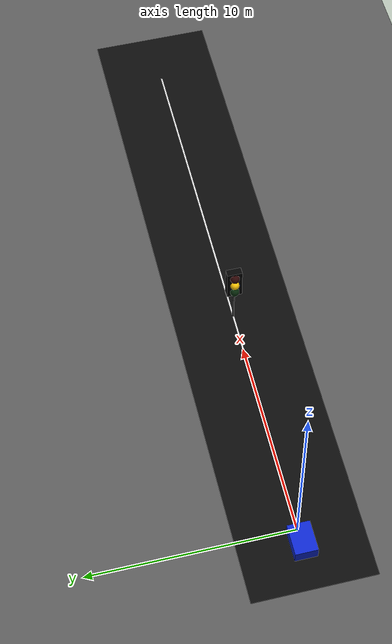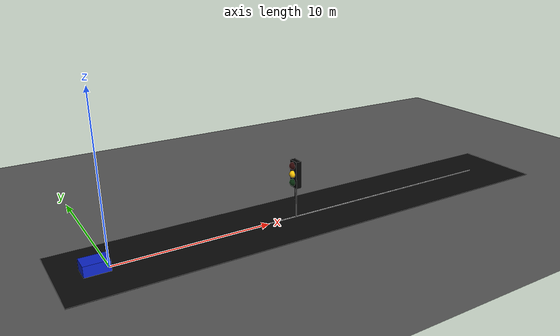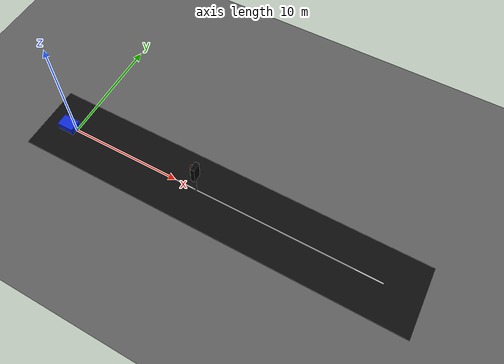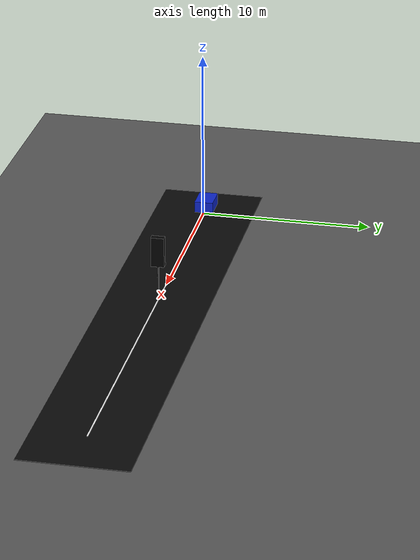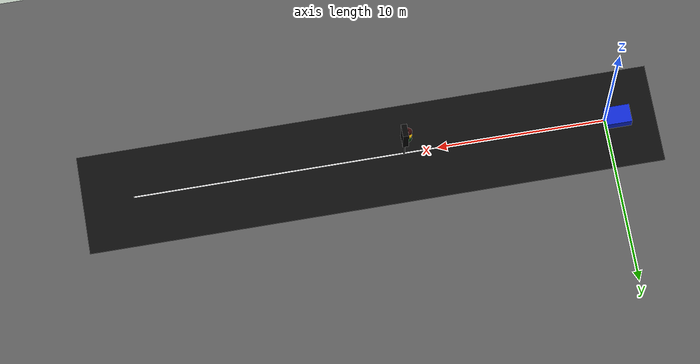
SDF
<?xml version="1.0"?>
<sdf version="1.9">
  <world name="scenario_yellow_light_only">

    <plugin
      filename="gz-sim-physics-system"
      name="gz::sim::systems::Physics">
    </plugin>

    <plugin
      filename="gz-sim-user-commands-system"
      name="gz::sim::systems::UserCommands">
    </plugin>

    <plugin
      filename="gz-sim-scene-broadcaster-system"
      name="gz::sim::systems::SceneBroadcaster">
    </plugin>

    <plugin
      filename="gz-sim-sensors-system"
      name="gz::sim::systems::Sensors">
      <render_engine>ogre2</render_engine>
    </plugin>

    <physics name="1ms" type="ignored">
      <max_step_size>0.001</max_step_size>
      <real_time_factor>1.0</real_time_factor>
    </physics>

    <light name="sun" type="directional">
      <cast_shadows>true</cast_shadows>
      <pose>0 0 10 0 0 0</pose>
      <diffuse>0.8 0.8 0.8 1</diffuse>
      <specular>0.2 0.2 0.2 1</specular>
      <attenuation>
        <range>1000</range>
        <constant>0.9</constant>
        <linear>0.01</linear>
        <quadratic>0.001</quadratic>
      </attenuation>
      <direction>-0.5 0.1 -0.9</direction>
    </light>

    <model name="ground">
      <static>true</static>
      <link name="ground_link">
        <collision name="ground_collision">
          <geometry>
            <plane>
              <normal>0 0 1</normal>
              <size>80 80</size>
            </plane>
          </geometry>
        </collision>

        <visual name="ground_visual">
          <geometry>
            <plane>
              <normal>0 0 1</normal>
              <size>80 80</size>
            </plane>
          </geometry>
          <material>
            <ambient>0.35 0.35 0.35 1</ambient>
            <diffuse>0.35 0.35 0.35 1</diffuse>
          </material>
        </visual>
      </link>
    </model>

    <model name="test_road">
      <static>true</static>
      <pose>14 0 0.015 0 0 0</pose>
      <link name="road_link">
        <visual name="road_visual">
          <geometry>
            <box>
              <size>34 6 0.03</size>
            </box>
          </geometry>
          <material>
            <ambient>0.04 0.04 0.04 1</ambient>
            <diffuse>0.04 0.04 0.04 1</diffuse>
          </material>
        </visual>
      </link>
    </model>

    <model name="center_line">
      <static>true</static>
      <pose>14 0 0.04 0 0 0</pose>
      <link name="center_line_link">
        <visual name="center_line_visual">
          <geometry>
            <box>
              <size>28 0.08 0.02</size>
            </box>
          </geometry>
          <material>
            <ambient>1 1 1 1</ambient>
            <diffuse>1 1 1 1</diffuse>
          </material>
        </visual>
      </link>
    </model>

    <model name="front_camera_static">
      <static>true</static>
      <pose>0 0 1.45 0 0 0</pose>

      <link name="camera_link">
        <sensor name="front_camera" type="camera">
          <always_on>1</always_on>
          <update_rate>30</update_rate>
          <visualize>true</visualize>
          <topic>/front_camera</topic>

          <camera>
            <horizontal_fov>1.047</horizontal_fov>
            <image>
              <width>1280</width>
              <height>720</height>
              <format>R8G8B8</format>
            </image>
            <clip>
              <near>0.05</near>
              <far>100</far>
            </clip>
          </camera>
        </sensor>
      </link>
    </model>

    <model name="ego_reference_box">
      <static>true</static>
      <pose>-0.75 0 0.35 0 0 0</pose>
      <link name="ego_link">
        <visual name="ego_visual">
          <geometry>
            <box>
              <size>1.5 1.1 0.7</size>
            </box>
          </geometry>
          <material>
            <ambient>0.05 0.15 0.8 1</ambient>
            <diffuse>0.05 0.15 0.8 1</diffuse>
          </material>
        </visual>
      </link>
    </model>

    <include>
      <uri>model://traffic_light_yellow_model</uri>
      <name>traffic_light_yellow_only</name>
      <pose>12 0 0 0 0 0</pose>
    </include>

  </world>
</sdf>

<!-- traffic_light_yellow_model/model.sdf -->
<sdf version="1.9">
  <model name="traffic_light_yellow_model">
    <static>true</static>
    <link name="traffic_light_link">
      <collision name="pole_collision">
        <pose>0 0 1.25 0 0 0</pose>
        <geometry><cylinder><radius>0.05</radius><length>2.5</length></cylinder></geometry>
      </collision>
      <visual name="pole_visual">
        <pose>0 0 1.25 0 0 0</pose>
        <geometry><cylinder><radius>0.05</radius><length>2.5</length></cylinder></geometry>
        <material><ambient>0.25 0.25 0.25 1</ambient><diffuse>0.25 0.25 0.25 1</diffuse></material>
      </visual>

      <collision name="housing_collision">
        <pose>0 0 3.0 0 0 0</pose>
        <geometry><box><size>0.35 0.75 1.75</size></box></geometry>
      </collision>
      <visual name="housing_visual">
        <pose>0 0 3.0 0 0 0</pose>
        <geometry><box><size>0.35 0.75 1.75</size></box></geometry>
        <material><ambient>0.01 0.01 0.01 1</ambient><diffuse>0.01 0.01 0.01 1</diffuse></material>
      </visual>

      <visual name="red_lamp_visual">
        <pose>-0.20 0 3.55 0 0 0</pose>
        <geometry><sphere><radius>0.23</radius></sphere></geometry>
        <material><ambient>0.18 0.02 0.02 1</ambient><diffuse>0.18 0.02 0.02 1</diffuse><emissive>0 0 0 1</emissive></material>
      </visual>
      <visual name="yellow_lamp_visual">
        <pose>-0.20 0 3.00 0 0 0</pose>
        <geometry><sphere><radius>0.23</radius></sphere></geometry>
        <material><ambient>1 0.78 0.02 1</ambient><diffuse>1 0.78 0.02 1</diffuse><emissive>1 0.55 0 1</emissive></material>
      </visual>
      <visual name="green_lamp_visual">
        <pose>-0.20 0 2.45 0 0 0</pose>
        <geometry><sphere><radius>0.23</radius></sphere></geometry>
        <material><ambient>0.02 0.16 0.04 1</ambient><diffuse>0.02 0.16 0.04 1</diffuse><emissive>0 0 0 1</emissive></material>
      </visual>
    </link>
  </model>
</sdf>
